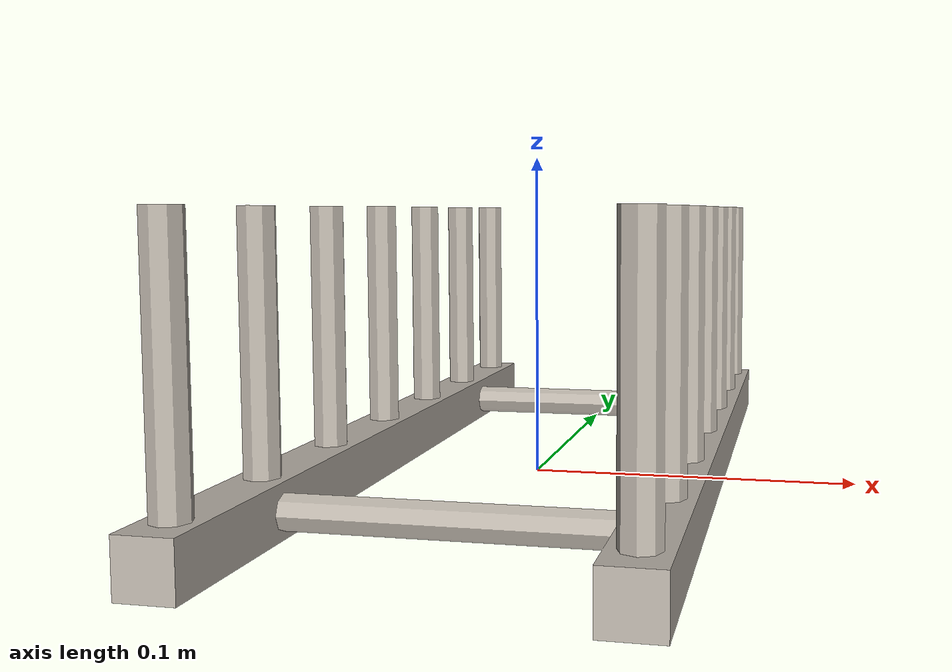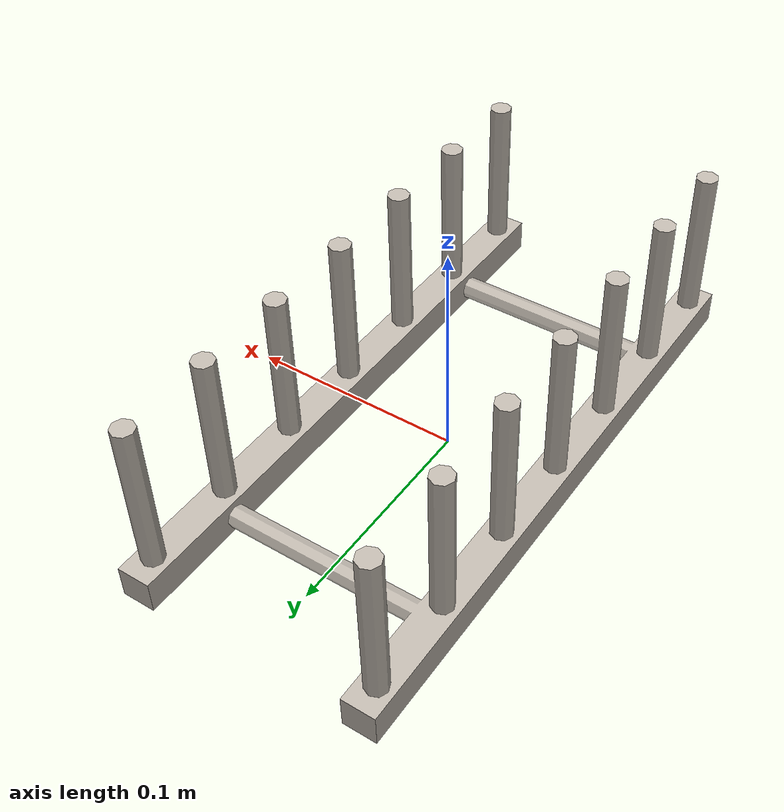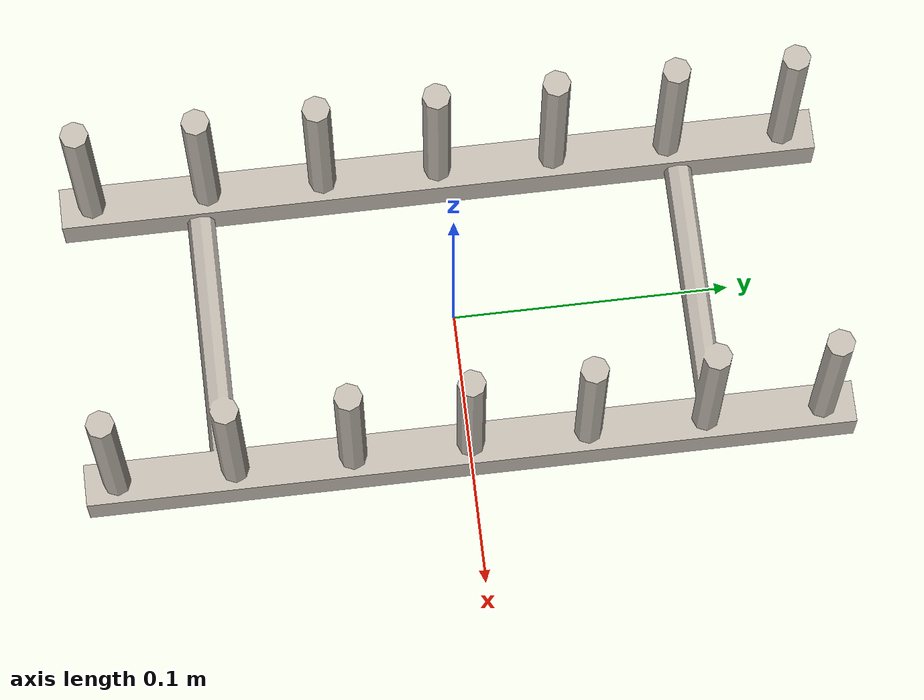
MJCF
<?xml version="1.0"?>
<mujoco model="dish_drainer">
  <compiler angle="radian" meshdir="assets" texturedir="assets" autolimits="true"/>
  <default>
    <default class="dish_drainer">
      <material specular="0.5" shininess="0.25"/>
      <default class="visual">
        <geom type="mesh" mass="0.1" contype="0" conaffinity="0" group="2" euler="1.5708 0 0"/>
      </default>
      <default class="collision">
        <geom type="mesh" mass="0" group="3" friction="0.5" euler="1.5708 0 0" priority="1"/>
      </default>
      <site size="0.001" rgba="0.5 0.5 0.5 0.3" group="4"/>
    </default>
  </default>
  <asset>
    <texture type="2d" name="dish_drainer_diffuse" file="drying_rack.png"/>
    <material name="dish_drainer" texture="dish_drainer_diffuse"/>
    <mesh file="rack.obj"/>
    <mesh file="rack_collision_001.obj"/>
    <mesh file="rack_collision_002.obj"/>
    <mesh file="rack_collision_003.obj"/>
    <mesh file="rack_collision_004.obj"/>
    <mesh file="rack_collision_005.obj"/>
    <mesh file="rack_collision_006.obj"/>
    <mesh file="rack_collision_007.obj"/>
    <mesh file="rack_collision_008.obj"/>
    <mesh file="rack_collision_009.obj"/>
    <mesh file="rack_collision_010.obj"/>
    <mesh file="rack_collision_011.obj"/>
    <mesh file="rack_collision_012.obj"/>
    <mesh file="rack_collision_013.obj"/>
    <mesh file="rack_collision_014.obj"/>
    <mesh file="rack_collision_015.obj"/>
    <mesh file="rack_collision_016.obj"/>
    <mesh file="rack_collision_017.obj"/>
    <mesh file="rack_collision_018.obj"/>
  </asset>
  <worldbody>
    <body name="dish_drainer" childclass="dish_drainer">
      <geom material="dish_drainer" mesh="rack" class="visual"/>
      <geom mesh="rack_collision_001" class="collision"/>
      <geom mesh="rack_collision_002" class="collision"/>
      <geom mesh="rack_collision_003" class="collision"/>
      <geom mesh="rack_collision_004" class="collision"/>
      <geom mesh="rack_collision_005" class="collision"/>
      <geom mesh="rack_collision_006" class="collision"/>
      <geom mesh="rack_collision_007" class="collision"/>
      <geom mesh="rack_collision_008" class="collision"/>
      <geom mesh="rack_collision_009" class="collision"/>
      <geom mesh="rack_collision_010" class="collision"/>
      <geom mesh="rack_collision_011" class="collision"/>
      <geom mesh="rack_collision_012" class="collision"/>
      <geom mesh="rack_collision_013" class="collision"/>
      <geom mesh="rack_collision_014" class="collision"/>
      <geom mesh="rack_collision_015" class="collision"/>
      <geom mesh="rack_collision_016" class="collision"/>
      <geom mesh="rack_collision_017" class="collision"/>
      <geom mesh="rack_collision_018" class="collision"/>
      <!--Use helpers below to align placement of objects in the rack-->
      <site name="plate_slot_1" pos="0 0.105 0.15" euler="1.5708 0 0"/>
      <site name="plate_slot_2" pos="0 0.063 0.15" euler="1.5708 0 0"/>
      <site name="plate_slot_3" pos="0 0.021 0.15" euler="1.5708 0 0"/>
      <site name="plate_slot_4" pos="0 -0.021 0.15" euler="1.5708 0 0"/>
      <site name="plate_slot_5" pos="0 -0.063 0.15" euler="1.5708 0 0"/>
      <site name="plate_slot_6" pos="0 -0.105 0.15" euler="1.5708 0 0"/>
    </body>
  </worldbody>
</mujoco>
